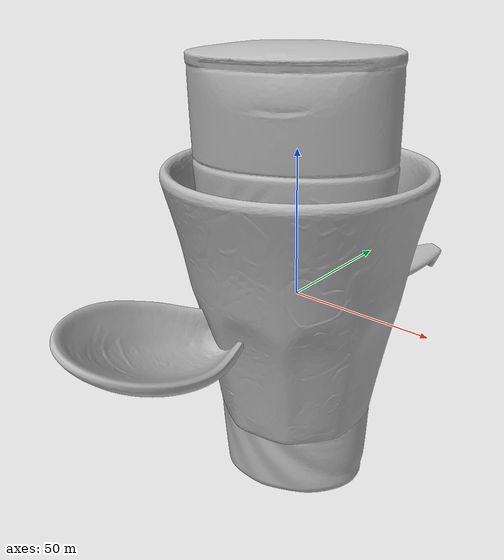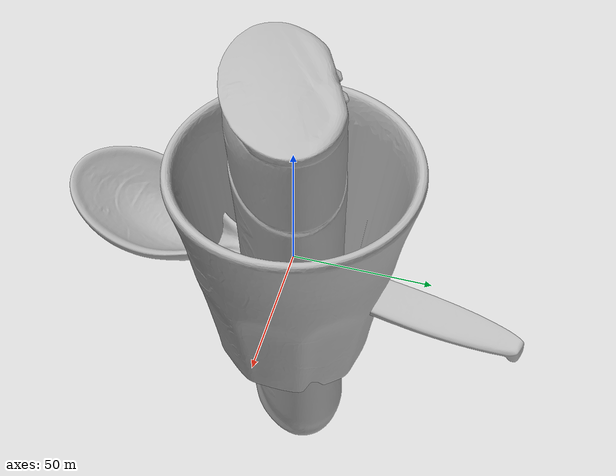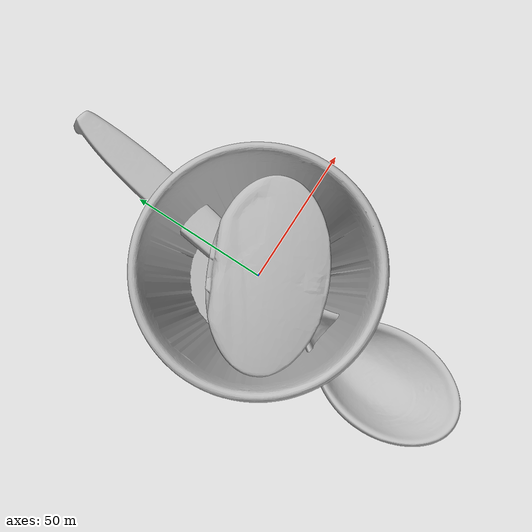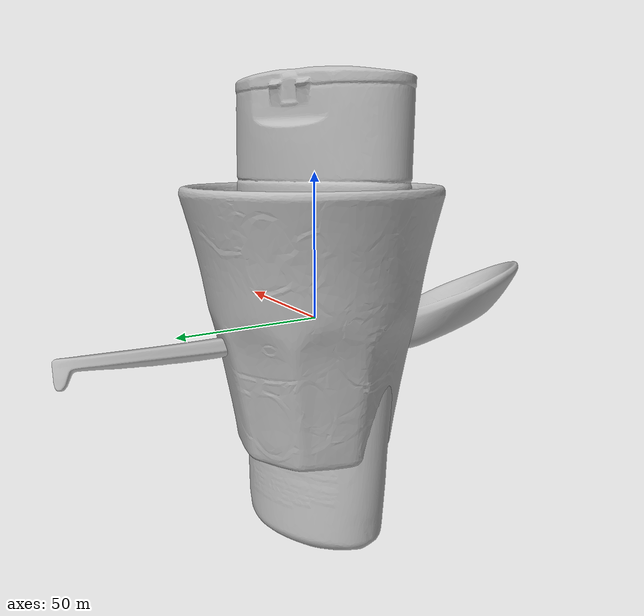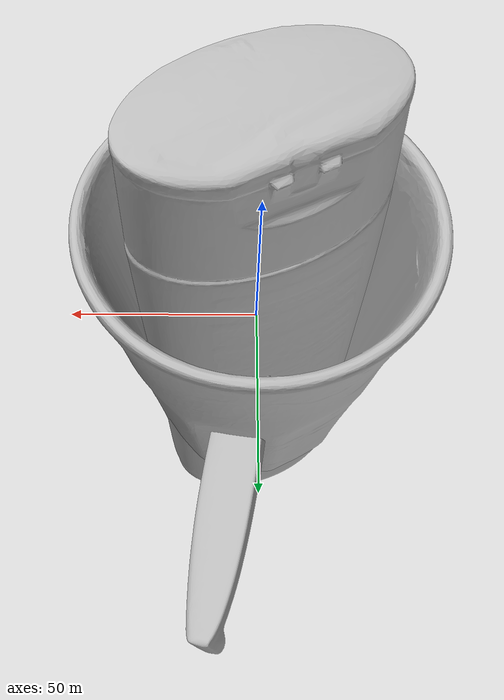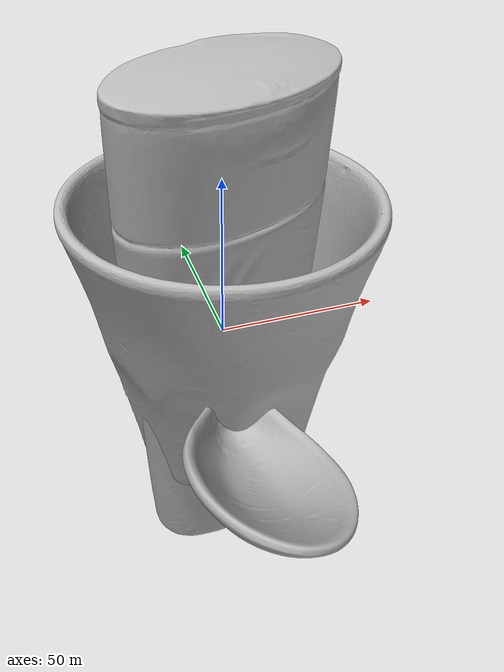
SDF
<sdf version="1.4">
 <world name="default">
  <light name="light1" type="point">
   <pose>0 0 1 0 0 0</pose>
   <diffuse>3 3 3 1</diffuse>
   <specular>3 3 3 1</specular>
  </light>
  <light name="light2" type="point">
   <pose>0 0.5 2 0 0 0</pose>
   <diffuse>1 1 1 1</diffuse>
   <specular>1 1 1 1</specular>
  </light>
  <light name="light3" type="point">
   <pose>0 0.5 2 0 0 0</pose>
   <diffuse>3 3 3 1</diffuse>
   <specular>3 3 3 1</specular>
  </light>
  <scene><ambient>0.7 0.7 0.7</ambient></scene>
  <model name="bottle1">
   <link name="link_bottle1">
    <collision name="default">
     <geometry>
      <mesh><uri>model://pure_zhen/collision_meshes/collision.obj</uri><scale>1.0 1.0 1.0</scale></mesh>
     </geometry>
     <surface>
      <friction><ode><mu>0.5</mu><mu2>0.5</mu2></ode></friction>
      <contact><ode><max_vel>0</max_vel><min_depth>0.0001</min_depth><kp>1e8</kp></ode></contact>
     </surface>
    </collision>
    <visual name="default">
     <geometry>
      <mesh><uri>model://pure_zhen/visual_meshes/visual.dae</uri><scale>1.0 1.0 1.0</scale></mesh>
     </geometry>
    </visual>
    <inertial>
     <mass>0.21128538250923157</mass>
     <pose>-8.582300506532192e-05 0.0002452346670906991 -0.0015797390369698405 -0.027642443229877835 0.005619248866174896 0.3057200614584077</pose>
     <inertia>
      <ixx>0.00063332287</ixx>
      <iyy>0.00063348823</iyy>
      <izz>6.6904315e-05</izz>
      <ixy>0</ixy>
      <ixz>0</ixz>
      <iyz>0</iyz>
     </inertia>
    </inertial>
   </link>
   <pose>-0.0543799065053463 0.02767544612288475 0.09194843471050262 0.019488745995622864 -0.016088479521324132 2.776762882433746</pose>
  </model>
  <model name="bottle2">
   <link name="link_bottle2">
    <collision name="default">
     <geometry>
      <mesh><uri>model://conditioner/collision_meshes/collision.obj</uri><scale>1.0 1.0 1.0</scale></mesh>
     </geometry>
     <surface>
      <friction><ode><mu>0.5</mu><mu2>0.5</mu2></ode></friction>
      <contact><ode><max_vel>0</max_vel><min_depth>0.0001</min_depth><kp>1e8</kp></ode></contact>
     </surface>
    </collision>
    <visual name="default">
     <geometry>
      <mesh><uri>model://conditioner/visual_meshes/visual.dae</uri><scale>1.0 1.0 1.0</scale></mesh>
     </geometry>
    </visual>
    <inertial>
     <mass>0.3611464500427246</mass>
     <pose>-0.00055994390277192 -0.0001729748910292983 0.004359682556241751 -0.005038374424784669 0.01530604350153207 0.015072341368129788</pose>
     <inertia>
      <ixx>0.00078562286</ixx>
      <iyy>0.0008415716</iyy>
      <izz>0.00012113213</izz>
      <ixy>0</ixy>
      <ixz>0</ixz>
      <iyz>0</iyz>
     </inertia>
    </inertial>
   </link>
   <pose>0.0523499958217144 -0.3449682295322418 0.08122976124286652 0.03689270983595729 -0.015660440945535436 0.4159315190910174</pose>
  </model>
  <model name="silverware1">
   <link name="link_silverware1">
    <collision name="default">
     <geometry>
      <mesh><uri>model://doraemon_spoon/collision_meshes/collision.obj</uri><scale>1.0 1.0 1.0</scale></mesh>
     </geometry>
     <surface>
      <friction><ode><mu>0.5</mu><mu2>0.5</mu2></ode></friction>
      <contact><ode><max_vel>0</max_vel><min_depth>0.0001</min_depth><kp>1e8</kp></ode></contact>
     </surface>
    </collision>
    <visual name="default">
     <geometry>
      <mesh><uri>model://doraemon_spoon/visual_meshes/visual.dae</uri><scale>1.0 1.0 1.0</scale></mesh>
     </geometry>
    </visual>
    <inertial>
     <mass>0.02099660225212574</mass>
     <pose>-0.02216508239507675 -0.0006374581134878099 -0.003332545980811119 -0.009147162014623967 0.07380421234862718 -0.01412382746948542</pose>
     <inertia>
      <ixx>1.6446534e-06</ixx>
      <iyy>4.671061e-05</iyy>
      <izz>4.7504738e-05</izz>
      <ixy>0</ixy>
      <ixz>0</ixz>
      <iyz>0</iyz>
     </inertia>
    </inertial>
   </link>
   <pose>0.2938014268875122 -0.2436111718416214 0.014737713150680065 0.2795418652257613 -0.010360839495609174 1.4186576322472404</pose>
  </model>
  <model name="stationery1">
   <link name="link_stationery1">
    <collision name="default">
     <geometry>
      <mesh><uri>model://correction_fuid/collision_meshes/collision.obj</uri><scale>1.0 1.0 1.0</scale></mesh>
     </geometry>
     <surface>
      <friction><ode><mu>0.5</mu><mu2>0.5</mu2></ode></friction>
      <contact><ode><max_vel>0</max_vel><min_depth>0.0001</min_depth><kp>1e8</kp></ode></contact>
     </surface>
    </collision>
    <visual name="default">
     <geometry>
      <mesh><uri>model://correction_fuid/visual_meshes/visual.dae</uri><scale>1.0 1.0 1.0</scale></mesh>
     </geometry>
    </visual>
    <inertial>
     <mass>0.046645622700452805</mass>
     <pose>-0.00012557735317386687 -0.0009722909890115261 -0.001618212671019137 -0.010846607840907904 0.019488357502694276 -0.015992455488392</pose>
     <inertia>
      <ixx>4.5177083e-05</ixx>
      <iyy>2.7341744e-06</iyy>
      <izz>4.635291e-05</izz>
      <ixy>0</ixy>
      <ixz>0</ixz>
      <iyz>0</iyz>
     </inertia>
    </inertial>
   </link>
   <pose>0.07782392203807831 -0.010632059536874294 0.009632831439375877 -0.0017271508718242773 -0.05616873859275015 0.9581562674793892</pose>
  </model>
  <model name="bowl1">
   <link name="link_bowl1">
    <collision name="default">
     <geometry>
      <mesh><uri>model://doraemon_bowl/collision_meshes/collision.obj</uri><scale>1.0 1.0 1.0</scale></mesh>
     </geometry>
     <surface>
      <friction><ode><mu>0.5</mu><mu2>0.5</mu2></ode></friction>
      <contact><ode><max_vel>0</max_vel><min_depth>0.0001</min_depth><kp>1e8</kp></ode></contact>
     </surface>
    </collision>
    <visual name="default">
     <geometry>
      <mesh><uri>model://doraemon_bowl/visual_meshes/visual.dae</uri><scale>1.0 1.0 1.0</scale></mesh>
     </geometry>
    </visual>
    <inertial>
     <mass>0.11811670660972595</mass>
     <pose>-0.014629551209509373 0.0004857121384702623 -0.0020864885300397873 -0.00509396228069995 -0.10568398533611668 -0.02642645986873745</pose>
     <inertia>
      <ixx>0.00016378764</ixx>
      <iyy>0.00021554313</iyy>
      <izz>0.00031711452</izz>
      <ixy>0</ixy>
      <ixz>0</ixz>
      <iyz>0</iyz>
     </inertia>
    </inertial>
   </link>
   <pose>0.1576770395040512 -0.1190512478351593 0.025905489921569824 0.008593533401536232 0.006343741086570617 2.4669222432939195</pose>
  </model>
  <model name="cup1">
   <link name="link_cup1">
    <collision name="default">
     <geometry>
      <mesh><uri>model://hello_kitty_cup/collision_meshes/collision.obj</uri><scale>1.0 1.0 1.0</scale></mesh>
     </geometry>
     <surface>
      <friction><ode><mu>0.5</mu><mu2>0.5</mu2></ode></friction>
      <contact><ode><max_vel>0</max_vel><min_depth>0.0001</min_depth><kp>1e8</kp></ode></contact>
     </surface>
    </collision>
    <visual name="default">
     <geometry>
      <mesh><uri>model://hello_kitty_cup/visual_meshes/visual.dae</uri><scale>1.0 1.0 1.0</scale></mesh>
     </geometry>
    </visual>
    <inertial>
     <mass>0.06522195786237717</mass>
     <pose>0.00027251147548668087 0.0002795039035845548 0.003044978016987443 0.05779148941225366 0.007964866585370347 -0.020452001862605422</pose>
     <inertia>
      <ixx>8.981858e-05</ixx>
      <iyy>9.081978e-05</iyy>
      <izz>7.573251e-05</izz>
      <ixy>0</ixy>
      <ixz>0</ixz>
      <iyz>0</iyz>
     </inertia>
    </inertial>
   </link>
   <pose>0.16584450006484985 -0.03422775864601135 0.04621629789471626 -0.005881504124122561 0.01079877829718042 0.6120427525713262</pose>
  </model>
  <model name="plate1">
   <link name="link_plate1">
    <collision name="default">
     <geometry>
      <mesh><uri>model://hello_kitty_plate/collision_meshes/collision.obj</uri><scale>1.0 1.0 1.0</scale></mesh>
     </geometry>
     <surface>
      <friction><ode><mu>0.5</mu><mu2>0.5</mu2></ode></friction>
      <contact><ode><max_vel>0</max_vel><min_depth>0.0001</min_depth><kp>1e8</kp></ode></contact>
     </surface>
    </collision>
    <visual name="default">
     <geometry>
      <mesh><uri>model://hello_kitty_plate/visual_meshes/visual.dae</uri><scale>1.0 1.0 1.0</scale></mesh>
     </geometry>
    </visual>
    <inertial>
     <mass>0.08260300010442734</mass>
     <pose>0.0073142931796610355 0.0002893725468311459 -0.0027947169728577137 -0.00010432002488368626 -0.007054440417891238 -0.014449022362072891</pose>
     <inertia>
      <ixx>0.0001592833</ixx>
      <iyy>0.00030061565</iyy>
      <izz>0.0004564546</izz>
      <ixy>0</ixy>
      <ixz>0</ixz>
      <iyz>0</iyz>
     </inertia>
    </inertial>
   </link>
   <pose>0.020666904747486115 -0.13007520139217377 0.008290646597743034 0.0004645751746946579 0.004161223135254241 -2.0467500905058187</pose>
  </model>
  <model name="box4">
   <link name="link_box4">
    <collision name="default">
     <geometry>
      <mesh><uri>model://wooden_puzzle1/collision_meshes/collision.obj</uri><scale>1.0 1.0 1.0</scale></mesh>
     </geometry>
     <surface>
      <friction><ode><mu>0.5</mu><mu2>0.5</mu2></ode></friction>
      <contact><ode><max_vel>0</max_vel><min_depth>0.0001</min_depth><kp>1e8</kp></ode></contact>
     </surface>
    </collision>
    <visual name="default">
     <geometry>
      <mesh><uri>model://wooden_puzzle1/visual_meshes/visual.dae</uri><scale>1.0 1.0 1.0</scale></mesh>
     </geometry>
    </visual>
    <inertial>
     <mass>0.034562814980745316</mass>
     <pose>-0.0001735068071866408 7.97226166469045e-05 -9.191555000143126e-05 -0.07784459827727222 -0.2636103773563706 -0.5528705263726328</pose>
     <inertia>
      <ixx>6.5210584e-06</ixx>
      <iyy>6.395525e-06</iyy>
      <izz>6.471823e-06</izz>
      <ixy>0</ixy>
      <ixz>0</ixz>
      <iyz>0</iyz>
     </inertia>
    </inertial>
   </link>
   <pose>-0.08275650441646576 0.0715566948056221 0.016801994293928146 0.010506377217682801 -0.009404016641109578 -1.6148766795718348</pose>
  </model>
  <physics type="ode">
   <max_contacts>50</max_contacts>
   <ode>
    <solver><type>quick</type><iters>75</iters></solver>
    <constraints>
     <contact_max_correcting_vel>0</contact_max_correcting_vel>
     <contact_surface_layer>0</contact_surface_layer>
    </constraints>
   </ode>
  </physics>
 </world>
</sdf>
